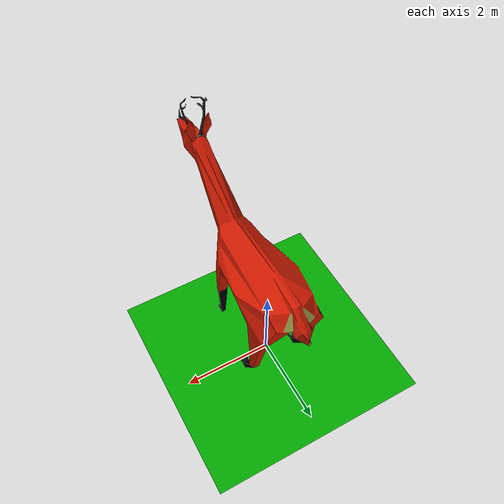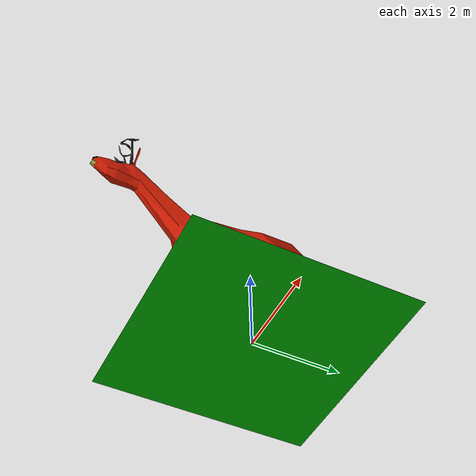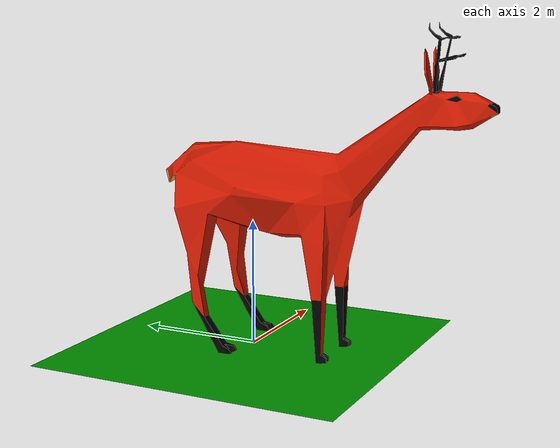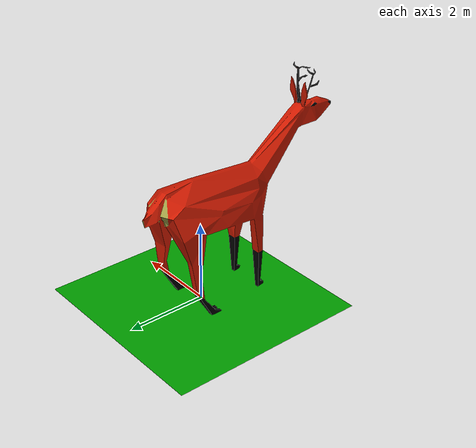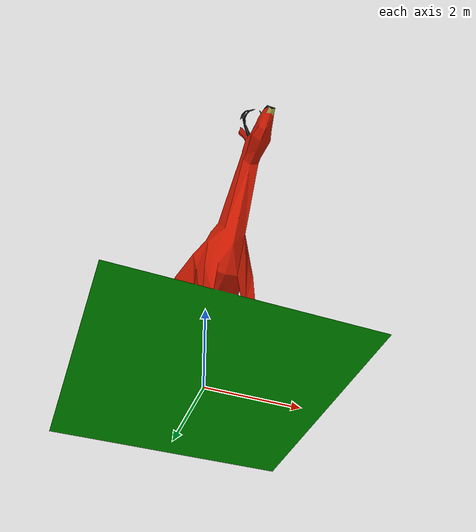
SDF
<?xml version="1.0"?>
<sdf version="1.4">
  <model name="deer_tdf">
    <static>true</static>
    <link name="body">
      <collision name="collision">
        <geometry>
          <mesh>
            <uri>model://deer_tdf/meshes/Deer.dae</uri>
          </mesh>
        </geometry>
      </collision>
      <visual name="visual">
        <geometry>
          <mesh><uri>model://deer_tdf/meshes/Deer.dae</uri></mesh>
        </geometry>
      </visual>
    </link>
  </model>
</sdf>
